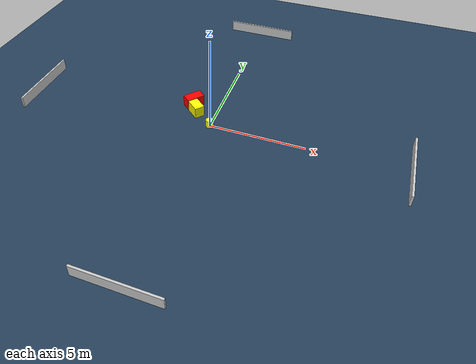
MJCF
<?xml version="1.0" ?>
<mujoco model="generated_environment">
  <option timestep="0.01" integrator="RK4" cone="elliptic"/>
  <default>
    <geom density="1"/>
  </default>
  <asset>
    <texture builtin="gradient" height="3072" name="skybox" rgb1="0.3 0.5 0.7" rgb2="0 0 0" type="skybox" width="512"/>
    <texture builtin="checker" height="300" name="groundplane" rgb1="0.2 0.3 0.4" rgb2="0.1 0.2 0.3" type="2d" width="300"/>
    <material name="groundplane" reflectance="0.2" texrepeat="5 5" texture="groundplane"/>
  </asset>
  <worldbody>
    <light dir="0 0 -1" directional="true" pos="0 0 1.5"/>
    <geom condim="3" friction="0.5 0.005 0.001" material="groundplane" name="floor" pos="0 0 0" size="0 0 0.05" type="plane"/>
    <body name="walls">
      <geom name="wall_1" condim="4" pos="-10.0 0.0 0.3" rgba="0.800000011920929 0.800000011920929 0.800000011920929 1.0" size="0.05 2.0 0.3" type="box"/>
      <geom name="wall_2" condim="4" pos="10.0 0.0 0.3" rgba="0.800000011920929 0.800000011920929 0.800000011920929 1.0" size="0.05 2.0 0.3" type="box"/>
      <geom name="wall_3" condim="4" pos="0.0 -10.0 0.3" rgba="0.800000011920929 0.800000011920929 0.800000011920929 1.0" size="2.0 0.05 0.3" type="box"/>
      <geom name="wall_4" condim="4" pos="0.0 10.0 0.3" rgba="0.800000011920929 0.800000011920929 0.800000011920929 1.0" size="2.0 0.05 0.3" type="box"/>
    </body>
    <body name="robot">
      <joint name="joint_x" type="slide" pos="0 0 0" axis="1 0 0"/>
      <joint name="joint_y" type="slide" pos="0 0 0" axis="0 1 0"/>
      <geom name="robot" type="cylinder" pos="0.0 0.0 0.2" size="0.2 0.2 0.0" mass="5.0" friction="1.0 0.005 0.0001" condim="4" rgba="1.0 1.0 0.0 1.0"/>
    </body>
    <body name="obstacle_1_movable">
      <geom name="obstacle_1_movable" condim="4" pos="-1.0420363269149342 0.7795012301537283 0.3" euler="0 0 229.10041386030187" friction="0.0 0.005 0.001" rgba="1.0 1.0 0.0 1.0" size="0.2654628023957426 0.39433909698096925 0.3" type="box" mass="0.1"/>
      <joint type="free"/>
    </body>
    <body name="obstacle_2_static">
      <geom name="obstacle_2_static" condim="4" pos="-1.4183848438048823 1.4000447081129357 0.3" euler="0 0 319.05485040070386" friction="0.0 0.005 0.001" rgba="1.0 0.0 0.0 1.0" size="0.2678088058083956 0.4862837073251483 0.3" type="box"/>
    </body>
  </worldbody>
  <actuator>
    <motor name="actuator_x" joint="joint_x" gear="1" ctrlrange="-1 1"/>
    <motor name="actuator_y" joint="joint_y" gear="1" ctrlrange="-1 1"/>
  </actuator>
</mujoco>
